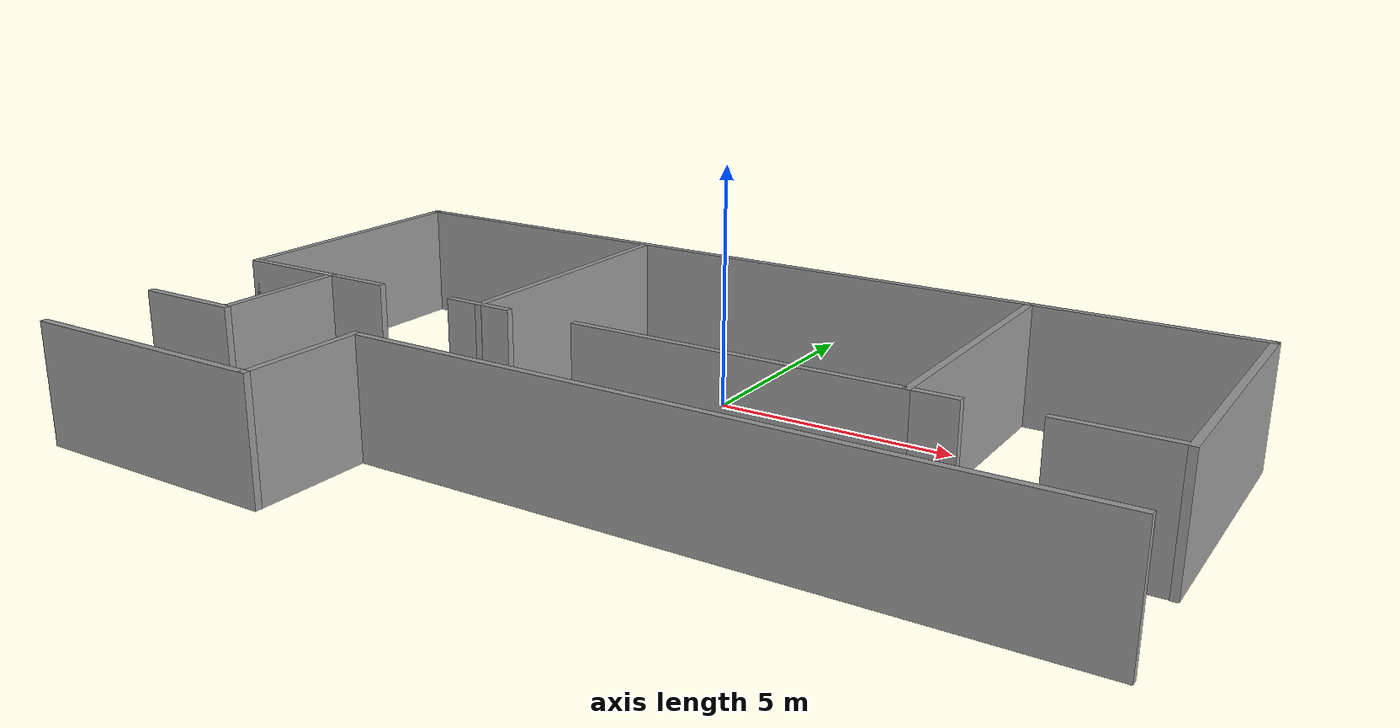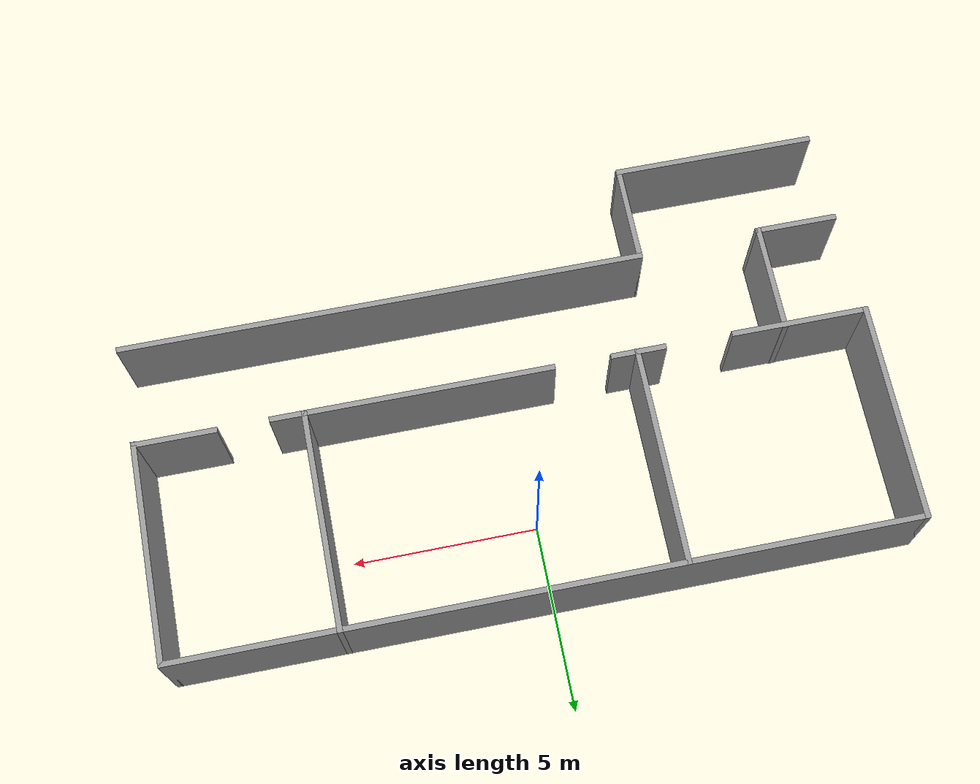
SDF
<?xml version='1.0'?>
<sdf version='1.6'>
  <model name='tp_real_room'>
    <pose frame=''>0.192876 -3.30512 0 0 -0 0</pose>
    <link name='Wall_0'>
      <collision name='Wall_0_Collision'>
        <geometry>
          <box>
            <size>19.75 0.15 2.5</size>
          </box>
        </geometry>
        <pose frame=''>0 0 1.25 0 -0 0</pose>
      </collision>
      <visual name='Wall_0_Visual'>
        <pose frame=''>0 0 1.25 0 -0 0</pose>
        <geometry>
          <box>
            <size>19.75 0.15 2.5</size>
          </box>
        </geometry>
        <material>
          <script>
            <uri>file://media/materials/scripts/gazebo.material</uri>
            <name>Gazebo/Grey</name>
          </script>
          <ambient>1 1 1 1</ambient>
        </material>
      </visual>
      <pose frame=''>-0.032876 5.58512 0 0 -0 0</pose>
    </link>
    <link name='Wall_12'>
      <collision name='Wall_12_Collision'>
        <geometry>
          <box>
            <size>6 0.15 2.5</size>
          </box>
        </geometry>
        <pose frame=''>0 0 1.25 0 -0 0</pose>
      </collision>
      <visual name='Wall_12_Visual'>
        <pose frame=''>0 0 1.25 0 -0 0</pose>
        <geometry>
          <box>
            <size>6 0.15 2.5</size>
          </box>
        </geometry>
        <material>
          <script>
            <uri>file://media/materials/scripts/gazebo.material</uri>
            <name>Gazebo/Grey</name>
          </script>
          <ambient>1 1 1 1</ambient>
        </material>
      </visual>
      <pose frame=''>5.30365 2.66285 0 0 0 -1.5708</pose>
    </link>
    <link name='Wall_13'>
      <collision name='Wall_13_Collision'>
        <geometry>
          <box>
            <size>6.75 0.15 2.5</size>
          </box>
        </geometry>
        <pose frame=''>0 0 1.25 0 -0 0</pose>
      </collision>
      <visual name='Wall_13_Visual'>
        <pose frame=''>0 0 1.25 0 -0 0</pose>
        <geometry>
          <box>
            <size>6.75 0.15 2.5</size>
          </box>
        </geometry>
        <material>
          <script>
            <uri>file://media/materials/scripts/gazebo.material</uri>
            <name>Gazebo/Grey</name>
          </script>
          <ambient>1 1 1 1</ambient>
        </material>
      </visual>
      <pose frame=''>2.00365 -0.262154 0 0 -0 3.14159</pose>
    </link>
    <link name='Wall_15'>
      <collision name='Wall_15_Collision'>
        <geometry>
          <box>
            <size>1 0.15 2.5</size>
          </box>
        </geometry>
        <pose frame=''>0 0 1.25 0 -0 0</pose>
      </collision>
      <visual name='Wall_15_Visual'>
        <pose frame=''>0 0 1.25 0 -0 0</pose>
        <geometry>
          <box>
            <size>1 0.15 2.5</size>
          </box>
        </geometry>
        <material>
          <script>
            <uri>file://media/materials/scripts/gazebo.material</uri>
            <name>Gazebo/Grey</name>
          </script>
          <ambient>1 1 1 1</ambient>
        </material>
      </visual>
      <pose frame=''>5.72865 -0.262154 0 0 -0 0</pose>
    </link>
    <link name='Wall_17'>
      <collision name='Wall_17_Collision'>
        <geometry>
          <box>
            <size>2.25 0.15 2.5</size>
          </box>
        </geometry>
        <pose frame=''>0 0 1.25 0 -0 0</pose>
      </collision>
      <visual name='Wall_17_Visual'>
        <pose frame=''>0 0 1.25 0 -0 0</pose>
        <geometry>
          <box>
            <size>2.25 0.15 2.5</size>
          </box>
        </geometry>
        <material>
          <script>
            <uri>file://media/materials/scripts/gazebo.material</uri>
            <name>Gazebo/Grey</name>
          </script>
          <ambient>1 1 1 1</ambient>
        </material>
      </visual>
      <pose frame=''>8.70539 -0.250441 0 0 -0 0</pose>
    </link>
    <link name='Wall_2'>
      <collision name='Wall_2_Collision'>
        <geometry>
          <box>
            <size>6 0.15 2.5</size>
          </box>
        </geometry>
        <pose frame=''>0 0 1.25 0 -0 0</pose>
      </collision>
      <visual name='Wall_2_Visual'>
        <pose frame=''>0 0 1.25 0 -0 0</pose>
        <geometry>
          <box>
            <size>6 0.15 2.5</size>
          </box>
        </geometry>
        <material>
          <script>
            <uri>file://media/materials/scripts/gazebo.material</uri>
            <name>Gazebo/Grey</name>
          </script>
          <ambient>1 1 1 1</ambient>
        </material>
      </visual>
      <pose frame=''>-9.83288 2.66012 0 0 0 -1.5708</pose>
    </link>
    <link name='Wall_20'>
      <collision name='Wall_20_Collision'>
        <geometry>
          <box>
            <size>6 0.15 2.5</size>
          </box>
        </geometry>
        <pose frame=''>0 0 1.25 0 -0 0</pose>
      </collision>
      <visual name='Wall_20_Visual'>
        <pose frame=''>0 0 1.25 0 -0 0</pose>
        <geometry>
          <box>
            <size>6 0.15 2.5</size>
          </box>
        </geometry>
        <material>
          <script>
            <uri>file://media/materials/scripts/gazebo.material</uri>
            <name>Gazebo/Grey</name>
          </script>
          <ambient>1 1 1 1</ambient>
        </material>
      </visual>
      <pose frame=''>9.76712 2.66012 0 0 0 -1.5708</pose>
    </link>
    <link name='Wall_22'>
      <collision name='Wall_22_Collision'>
        <geometry>
          <box>
            <size>3 0.15 2.5</size>
          </box>
        </geometry>
        <pose frame=''>0 0 1.25 0 -0 0</pose>
      </collision>
      <visual name='Wall_22_Visual'>
        <pose frame=''>0 0 1.25 0 -0 0</pose>
        <geometry>
          <box>
            <size>3 0.15 2.5</size>
          </box>
        </geometry>
        <material>
          <script>
            <uri>file://media/materials/scripts/gazebo.material</uri>
            <name>Gazebo/Grey</name>
          </script>
          <ambient>1 1 1 1</ambient>
        </material>
      </visual>
      <pose frame=''>-7.60187 -1.67537 0 0 0 -1.5708</pose>
    </link>
    <link name='Wall_23'>
      <collision name='Wall_23_Collision'>
        <geometry>
          <box>
            <size>2.25 0.15 2.5</size>
          </box>
        </geometry>
        <pose frame=''>0 0 1.25 0 -0 0</pose>
      </collision>
      <visual name='Wall_23_Visual'>
        <pose frame=''>0 0 1.25 0 -0 0</pose>
        <geometry>
          <box>
            <size>2.25 0.15 2.5</size>
          </box>
        </geometry>
        <material>
          <script>
            <uri>file://media/materials/scripts/gazebo.material</uri>
            <name>Gazebo/Grey</name>
          </script>
          <ambient>1 1 1 1</ambient>
        </material>
      </visual>
      <pose frame=''>-8.65187 -3.10037 0 0 -0 3.14159</pose>
    </link>
    <link name='Wall_25'>
      <collision name='Wall_25_Collision'>
        <geometry>
          <box>
            <size>14.25 0.15 2.5</size>
          </box>
        </geometry>
        <pose frame=''>0 0 1.25 0 -0 0</pose>
      </collision>
      <visual name='Wall_25_Visual'>
        <pose frame=''>0 0 1.25 0 -0 0</pose>
        <geometry>
          <box>
            <size>14.25 0.15 2.5</size>
          </box>
        </geometry>
        <material>
          <script>
            <uri>file://media/materials/scripts/gazebo.material</uri>
            <name>Gazebo/Grey</name>
          </script>
          <ambient>1 1 1 1</ambient>
        </material>
      </visual>
      <pose frame=''>2.78288 -2.98785 0 0 -0 0</pose>
    </link>
    <link name='Wall_28'>
      <collision name='Wall_28_Collision'>
        <geometry>
          <box>
            <size>2.75 0.15 2.5</size>
          </box>
        </geometry>
        <pose frame=''>0 0 1.25 0 -0 0</pose>
      </collision>
      <visual name='Wall_28_Visual'>
        <pose frame=''>0 0 1.25 0 -0 0</pose>
        <geometry>
          <box>
            <size>2.75 0.15 2.5</size>
          </box>
        </geometry>
        <material>
          <script>
            <uri>file://media/materials/scripts/gazebo.material</uri>
            <name>Gazebo/Grey</name>
          </script>
          <ambient>1 1 1 1</ambient>
        </material>
      </visual>
      <pose frame=''>-4.26712 -4.28785 0 0 0 -1.5708</pose>
    </link>
    <link name='Wall_29'>
      <collision name='Wall_29_Collision'>
        <geometry>
          <box>
            <size>5.5 0.15 2.5</size>
          </box>
        </geometry>
        <pose frame=''>0 0 1.25 0 -0 0</pose>
      </collision>
      <visual name='Wall_29_Visual'>
        <pose frame=''>0 0 1.25 0 -0 0</pose>
        <geometry>
          <box>
            <size>5.5 0.15 2.5</size>
          </box>
        </geometry>
        <material>
          <script>
            <uri>file://media/materials/scripts/gazebo.material</uri>
            <name>Gazebo/Grey</name>
          </script>
          <ambient>1 1 1 1</ambient>
        </material>
      </visual>
      <pose frame=''>-6.94212 -5.58785 0 0 -0 3.14159</pose>
    </link>
    <link name='Wall_4'>
      <collision name='Wall_4_Collision'>
        <geometry>
          <box>
            <size>6 0.15 2.5</size>
          </box>
        </geometry>
        <pose frame=''>0 0 1.25 0 -0 0</pose>
      </collision>
      <visual name='Wall_4_Visual'>
        <pose frame=''>0 0 1.25 0 -0 0</pose>
        <geometry>
          <box>
            <size>6 0.15 2.5</size>
          </box>
        </geometry>
        <material>
          <script>
            <uri>file://media/materials/scripts/gazebo.material</uri>
            <name>Gazebo/Grey</name>
          </script>
          <ambient>1 1 1 1</ambient>
        </material>
      </visual>
      <pose frame=''>-3.5956 2.65901 0 0 0 -1.5708</pose>
    </link>
    <link name='Wall_6'>
      <collision name='Wall_6_Collision'>
        <geometry>
          <box>
            <size>3.75 0.15 2.5</size>
          </box>
        </geometry>
        <pose frame=''>0 0 1.25 0 -0 0</pose>
      </collision>
      <visual name='Wall_6_Visual'>
        <pose frame=''>0 0 1.25 0 -0 0</pose>
        <geometry>
          <box>
            <size>3.75 0.15 2.5</size>
          </box>
        </geometry>
        <material>
          <script>
            <uri>file://media/materials/scripts/gazebo.material</uri>
            <name>Gazebo/Grey</name>
          </script>
          <ambient>1 1 1 1</ambient>
        </material>
      </visual>
      <pose frame=''>-8.03288 -0.26488 0 0 -0 0</pose>
    </link>
    <link name='Wall_9'>
      <collision name='Wall_9_Collision'>
        <geometry>
          <box>
            <size>1.5 0.15 2.5</size>
          </box>
        </geometry>
        <pose frame=''>0 0 1.25 0 -0 0</pose>
      </collision>
      <visual name='Wall_9_Visual'>
        <pose frame=''>0 0 1.25 0 -0 0</pose>
        <geometry>
          <box>
            <size>1.5 0.15 2.5</size>
          </box>
        </geometry>
        <material>
          <script>
            <uri>file://media/materials/scripts/gazebo.material</uri>
            <name>Gazebo/Grey</name>
          </script>
          <ambient>1 1 1 1</ambient>
        </material>
      </visual>
      <pose frame=''>-3.62108 -0.260786 0 0 -0 0</pose>
    </link>
    <static>1</static>
  </model>
</sdf>
